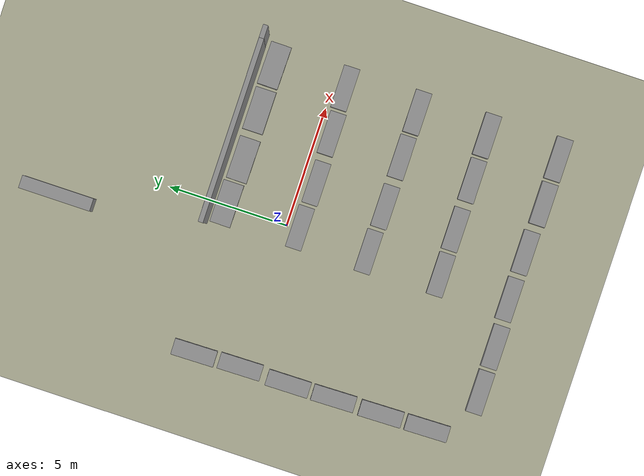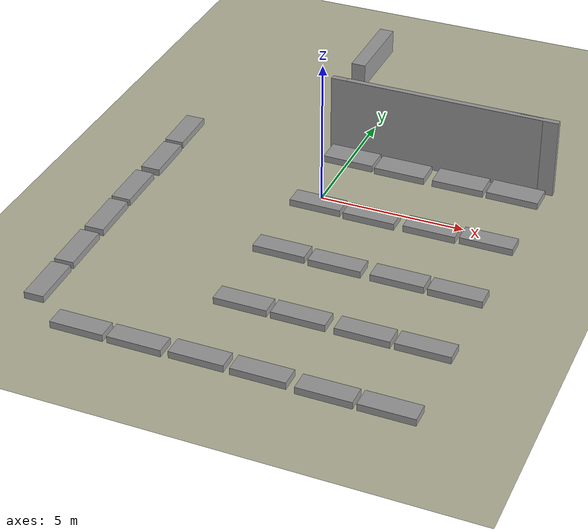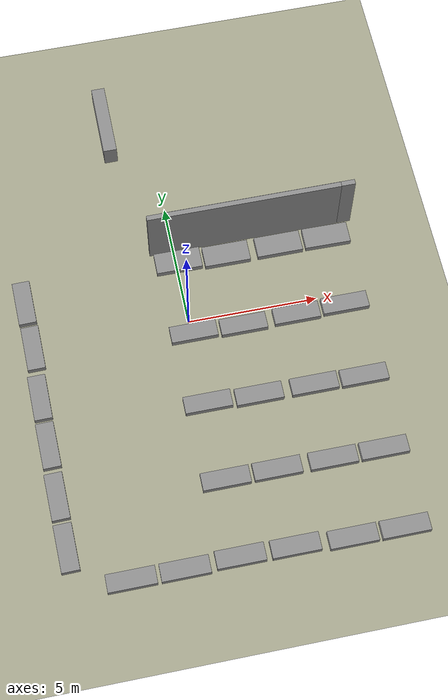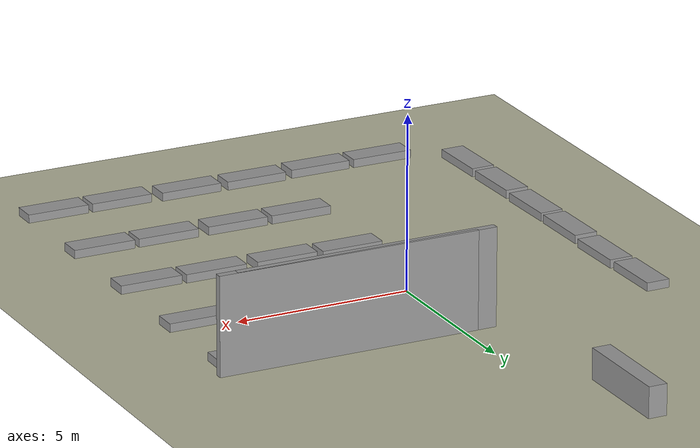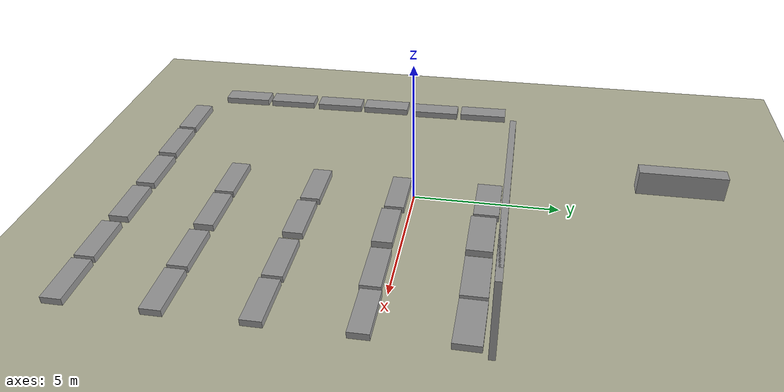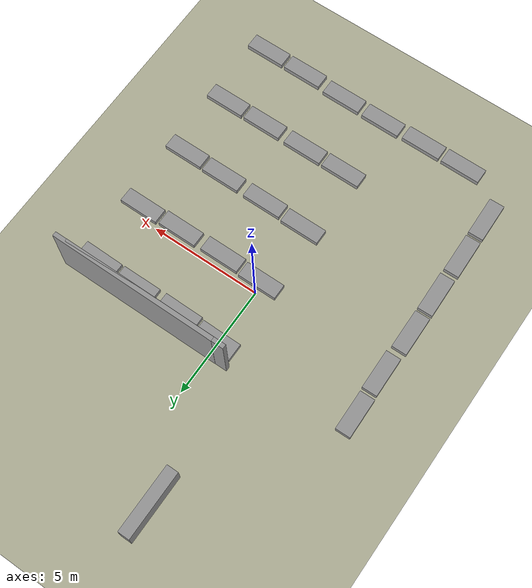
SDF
<sdf version="1.7">
 <world name="default">
  <gravity>0 0 -9.8</gravity>
  <physics name="default_physics" default="0" type="ode">
   <max_step_size>0.001</max_step_size>
   <real_time_factor>1</real_time_factor>
   <real_time_update_rate>1000</real_time_update_rate>
  </physics>
  <light name="Warehouse_CeilingLight_003" type="point">
   <pose>0 0 9 0 -0 0</pose>
   <diffuse>0.5 0.5 0.5 1</diffuse>
   <specular>0.2 0.2 0.2 1</specular>
   <attenuation>
    <range>80</range>
    <constant>0.3</constant>
    <linear>0.01</linear>
    <quadratic>0.001</quadratic>
   </attenuation>
   <direction>0.1 0.1 -1</direction>
   <spot><inner_angle>0</inner_angle><outer_angle>0</outer_angle><falloff>0</falloff></spot>
  </light>
  <magnetic_field>6e-06 2.3e-05 -4.2e-05</magnetic_field>
  <atmosphere type="adiabatic"/>
  <scene><ambient>0.4 0.4 0.4 1</ambient><background>0.7 0.7 0.7 1</background><shadows>1</shadows></scene>
  <spherical_coordinates>
   <surface_model>EARTH_WGS84</surface_model>
   <latitude_deg>0</latitude_deg>
   <longitude_deg>0</longitude_deg>
   <elevation>0</elevation>
   <heading_deg>0</heading_deg>
  </spherical_coordinates>
  <model name="ground_plane_residential">
   <static>1</static>
   <link name="link">
    <collision name="collision">
     <geometry><plane><normal>0 0 1</normal><size>100 100</size></plane></geometry>
     <surface><friction><ode><mu>100</mu><mu2>50</mu2></ode></friction></surface>
    </collision>
    <visual name="visual">
     <cast_shadows>0</cast_shadows>
     <geometry><plane><normal>0 0 1</normal><size>100 100</size></plane></geometry>
     <material>
      <script><uri>file://media/materials/scripts/gazebo.material</uri><name>Gazebo/Residential</name></script>
     </material>
    </visual>
   </link>
   <pose>5.00951 -6.46947 0 0 -0 0</pose>
  </model>
  <model name="grey_wall">
   <static>1</static>
   <link name="link">
    <pose>0 0 1.4 0 -0 0</pose>
    <collision name="collision"><geometry><box><size>7.5 0.2 2.8</size></box></geometry></collision>
    <visual name="visual">
     <cast_shadows>0</cast_shadows>
     <geometry><box><size>7.5 0.2 2.8</size></box></geometry>
     <material>
      <script>
       <uri>model://grey_wall/materials/scripts</uri>
       <uri>model://grey_wall/materials/textures</uri>
       <name>vrc/grey_wall</name>
      </script>
     </material>
    </visual>
   </link>
   <pose>2.80903 3.20071 0 0 -0 0</pose>
  </model>
  <model name="grey_wall_clone">
   <static>1</static>
   <link name="link">
    <pose>0 0 1.4 0 -0 0</pose>
    <collision name="collision"><geometry><box><size>7.5 0.2 2.8</size></box></geometry></collision>
    <visual name="visual">
     <cast_shadows>0</cast_shadows>
     <geometry><box><size>7.5 0.2 2.8</size></box></geometry>
     <material>
      <script>
       <uri>model://grey_wall/materials/scripts</uri>
       <uri>model://grey_wall/materials/textures</uri>
       <name>vrc/grey_wall</name>
      </script>
     </material>
    </visual>
   </link>
   <pose>3.34712 3.20678 0 0 -0 0</pose>
  </model>
  <model name="unit_box_clone_2_clone">
   <pose>4.09103 -0.535972 0.119798 0 0 -4.1e-05</pose>
   <link name="link">
    <inertial>
     <mass>1</mass>
     <inertia>
      <ixx>0.166667</ixx>
      <ixy>0</ixy>
      <ixz>0</ixz>
      <iyy>0.166667</iyy>
      <iyz>0</iyz>
      <izz>0.166667</izz>
     </inertia>
    </inertial>
    <collision name="collision"><geometry><box><size>1.78973 0.671476 0.239596</size></box></geometry></collision>
    <visual name="visual">
     <geometry><box><size>1.78973 0.671476 0.239596</size></box></geometry>
     <material>
      <script><name>Gazebo/Grey</name><uri>file://media/materials/scripts/gazebo.material</uri></script>
     </material>
    </visual>
   </link>
  </model>
  <model name="unit_box_clone_2_clone_0">
   <pose>2.00829 -0.581033 0.119798 0 0 -1.1e-05</pose>
   <link name="link">
    <inertial>
     <mass>1</mass>
     <inertia>
      <ixx>0.166667</ixx>
      <ixy>0</ixy>
      <ixz>0</ixz>
      <iyy>0.166667</iyy>
      <iyz>0</iyz>
      <izz>0.166667</izz>
     </inertia>
    </inertial>
    <collision name="collision"><geometry><box><size>1.78973 0.671476 0.239596</size></box></geometry></collision>
    <visual name="visual">
     <geometry><box><size>1.78973 0.671476 0.239596</size></box></geometry>
     <material>
      <script><name>Gazebo/Grey</name><uri>file://media/materials/scripts/gazebo.material</uri></script>
     </material>
    </visual>
   </link>
  </model>
  <model name="unit_box_clone_2_clone_1">
   <pose>0.091098 -0.523038 0.119798 0 0 -1e-06</pose>
   <link name="link">
    <inertial>
     <mass>1</mass>
     <inertia>
      <ixx>0.166667</ixx>
      <ixy>0</ixy>
      <ixz>0</ixz>
      <iyy>0.166667</iyy>
      <iyz>0</iyz>
      <izz>0.166667</izz>
     </inertia>
    </inertial>
    <collision name="collision"><geometry><box><size>1.78973 0.671476 0.239596</size></box></geometry></collision>
    <visual name="visual">
     <geometry><box><size>1.78973 0.671476 0.239596</size></box></geometry>
     <material>
      <script><name>Gazebo/Grey</name><uri>file://media/materials/scripts/gazebo.material</uri></script>
     </material>
    </visual>
   </link>
  </model>
  <model name="unit_box_clone_2_clone_1_clone">
   <pose>0.04741 -3.45904 0.119798 0 0 -1e-06</pose>
   <link name="link">
    <inertial>
     <mass>1</mass>
     <inertia>
      <ixx>0.166667</ixx>
      <ixy>0</ixy>
      <ixz>0</ixz>
      <iyy>0.166667</iyy>
      <iyz>0</iyz>
      <izz>0.166667</izz>
     </inertia>
    </inertial>
    <collision name="collision"><geometry><box><size>1.78973 0.671476 0.239596</size></box></geometry></collision>
    <visual name="visual">
     <geometry><box><size>1.78973 0.671476 0.239596</size></box></geometry>
     <material>
      <script><name>Gazebo/Grey</name><uri>file://media/materials/scripts/gazebo.material</uri></script>
     </material>
    </visual>
   </link>
  </model>
  <model name="unit_box_clone_2_clone_1_clone_0">
   <pose>1.98103 -3.51931 0.119798 0 0 -1e-06</pose>
   <link name="link">
    <inertial>
     <mass>1</mass>
     <inertia>
      <ixx>0.166667</ixx>
      <ixy>0</ixy>
      <ixz>0</ixz>
      <iyy>0.166667</iyy>
      <iyz>0</iyz>
      <izz>0.166667</izz>
     </inertia>
    </inertial>
    <collision name="collision"><geometry><box><size>1.78973 0.671476 0.239596</size></box></geometry></collision>
    <visual name="visual">
     <geometry><box><size>1.78973 0.671476 0.239596</size></box></geometry>
     <material>
      <script><name>Gazebo/Grey</name><uri>file://media/materials/scripts/gazebo.material</uri></script>
     </material>
    </visual>
   </link>
  </model>
  <model name="unit_box_clone_2_clone_1_clone_1">
   <pose>4.08793 -3.52641 0.119798 0 0 -1e-06</pose>
   <link name="link">
    <inertial>
     <mass>1</mass>
     <inertia>
      <ixx>0.166667</ixx>
      <ixy>0</ixy>
      <ixz>0</ixz>
      <iyy>0.166667</iyy>
      <iyz>0</iyz>
      <izz>0.166667</izz>
     </inertia>
    </inertial>
    <collision name="collision"><geometry><box><size>1.78973 0.671476 0.239596</size></box></geometry></collision>
    <visual name="visual">
     <geometry><box><size>1.78973 0.671476 0.239596</size></box></geometry>
     <material>
      <script><name>Gazebo/Grey</name><uri>file://media/materials/scripts/gazebo.material</uri></script>
     </material>
    </visual>
   </link>
  </model>
  <model name="unit_box_clone_2_clone_1_clone_2">
   <pose>5.99796 -3.5479 0.119798 0 0 -1e-06</pose>
   <link name="link">
    <inertial>
     <mass>1</mass>
     <inertia>
      <ixx>0.166667</ixx>
      <ixy>0</ixy>
      <ixz>0</ixz>
      <iyy>0.166667</iyy>
      <iyz>0</iyz>
      <izz>0.166667</izz>
     </inertia>
    </inertial>
    <collision name="collision"><geometry><box><size>1.78973 0.671476 0.239596</size></box></geometry></collision>
    <visual name="visual">
     <geometry><box><size>1.78973 0.671476 0.239596</size></box></geometry>
     <material>
      <script><name>Gazebo/Grey</name><uri>file://media/materials/scripts/gazebo.material</uri></script>
     </material>
    </visual>
   </link>
  </model>
  <model name="unit_box_clone_2_clone_1_clone_3">
   <pose>6.00818 -9.55888 0.119798 0 -0 5.2e-05</pose>
   <link name="link">
    <inertial>
     <mass>1</mass>
     <inertia>
      <ixx>0.166667</ixx>
      <ixy>0</ixy>
      <ixz>0</ixz>
      <iyy>0.166667</iyy>
      <iyz>0</iyz>
      <izz>0.166667</izz>
     </inertia>
    </inertial>
    <collision name="collision"><geometry><box><size>1.78973 0.671476 0.239596</size></box></geometry></collision>
    <visual name="visual">
     <geometry><box><size>1.78973 0.671476 0.239596</size></box></geometry>
     <material>
      <script><name>Gazebo/Grey</name><uri>file://media/materials/scripts/gazebo.material</uri></script>
     </material>
    </visual>
   </link>
  </model>
  <model name="unit_box_clone_2_clone_1_clone_4">
   <pose>4.0911 -9.55886 0.119798 0 0 -1.4e-05</pose>
   <link name="link">
    <inertial>
     <mass>1</mass>
     <inertia>
      <ixx>0.166667</ixx>
      <ixy>0</ixy>
      <ixz>0</ixz>
      <iyy>0.166667</iyy>
      <iyz>0</iyz>
      <izz>0.166667</izz>
     </inertia>
    </inertial>
    <collision name="collision"><geometry><box><size>1.78973 0.671476 0.239596</size></box></geometry></collision>
    <visual name="visual">
     <geometry><box><size>1.78973 0.671476 0.239596</size></box></geometry>
     <material>
      <script><name>Gazebo/Grey</name><uri>file://media/materials/scripts/gazebo.material</uri></script>
     </material>
    </visual>
   </link>
  </model>
  <model name="unit_box_clone_2_clone_1_clone_5">
   <pose>2.00831 -9.48307 0.119798 0 0 -3e-06</pose>
   <link name="link">
    <inertial>
     <mass>1</mass>
     <inertia>
      <ixx>0.166667</ixx>
      <ixy>0</ixy>
      <ixz>0</ixz>
      <iyy>0.166667</iyy>
      <iyz>0</iyz>
      <izz>0.166667</izz>
     </inertia>
    </inertial>
    <collision name="collision"><geometry><box><size>1.78973 0.671476 0.239596</size></box></geometry></collision>
    <visual name="visual">
     <geometry><box><size>1.78973 0.671476 0.239596</size></box></geometry>
     <material>
      <script><name>Gazebo/Grey</name><uri>file://media/materials/scripts/gazebo.material</uri></script>
     </material>
    </visual>
   </link>
  </model>
  <model name="unit_box_clone_2_clone_1_clone_6">
   <pose>0.01324 -9.46841 0.119798 -0 -0 -1e-06</pose>
   <link name="link">
    <inertial>
     <mass>1</mass>
     <inertia>
      <ixx>0.166667</ixx>
      <ixy>0</ixy>
      <ixz>0</ixz>
      <iyy>0.166667</iyy>
      <iyz>0</iyz>
      <izz>0.166667</izz>
     </inertia>
    </inertial>
    <collision name="collision"><geometry><box><size>1.78973 0.671476 0.239596</size></box></geometry></collision>
    <visual name="visual">
     <geometry><box><size>1.78973 0.671476 0.239596</size></box></geometry>
     <material>
      <script><name>Gazebo/Grey</name><uri>file://media/materials/scripts/gazebo.material</uri></script>
     </material>
    </visual>
   </link>
  </model>
  <model name="unit_box_clone_2_clone_1_clone_7">
   <pose>-1.9917 -9.52852 0.119798 0 -0 -6e-06</pose>
   <link name="link">
    <inertial>
     <mass>1</mass>
     <inertia>
      <ixx>0.166667</ixx>
      <ixy>0</ixy>
      <ixz>0</ixz>
      <iyy>0.166667</iyy>
      <iyz>0</iyz>
      <izz>0.166667</izz>
     </inertia>
    </inertial>
    <collision name="collision"><geometry><box><size>1.78973 0.671476 0.239596</size></box></geometry></collision>
    <visual name="visual">
     <geometry><box><size>1.78973 0.671476 0.239596</size></box></geometry>
     <material>
      <script><name>Gazebo/Grey</name><uri>file://media/materials/scripts/gazebo.material</uri></script>
     </material>
    </visual>
   </link>
  </model>
  <model name="unit_box_clone_2_clone_1_clone_8">
   <pose>-3.91964 -9.53501 0.119798 0 -0 -1e-06</pose>
   <link name="link">
    <inertial>
     <mass>1</mass>
     <inertia>
      <ixx>0.166667</ixx>
      <ixy>0</ixy>
      <ixz>0</ixz>
      <iyy>0.166667</iyy>
      <iyz>0</iyz>
      <izz>0.166667</izz>
     </inertia>
    </inertial>
    <collision name="collision"><geometry><box><size>1.78973 0.671476 0.239596</size></box></geometry></collision>
    <visual name="visual">
     <geometry><box><size>1.78973 0.671476 0.239596</size></box></geometry>
     <material>
      <script><name>Gazebo/Grey</name><uri>file://media/materials/scripts/gazebo.material</uri></script>
     </material>
    </visual>
   </link>
  </model>
  <model name="unit_box_clone_2_clone_1_clone_9">
   <pose>-5.97525 -7.95497 0.119793 1.4e-05 -0 1.59163</pose>
   <link name="link">
    <inertial>
     <mass>1</mass>
     <inertia>
      <ixx>0.166667</ixx>
      <ixy>0</ixy>
      <ixz>0</ixz>
      <iyy>0.166667</iyy>
      <iyz>0</iyz>
      <izz>0.166667</izz>
     </inertia>
    </inertial>
    <collision name="collision"><geometry><box><size>1.78973 0.671476 0.239596</size></box></geometry></collision>
    <visual name="visual">
     <geometry><box><size>1.78973 0.671476 0.239596</size></box></geometry>
     <material>
      <script><name>Gazebo/Grey</name><uri>file://media/materials/scripts/gazebo.material</uri></script>
     </material>
    </visual>
   </link>
  </model>
  <model name="unit_box_clone_2_clone_1_clone_9_clone">
   <pose>-6.00971 -6.00134 0.119793 1.4e-05 -0 1.59163</pose>
   <link name="link">
    <inertial>
     <mass>1</mass>
     <inertia>
      <ixx>0.166667</ixx>
      <ixy>0</ixy>
      <ixz>0</ixz>
      <iyy>0.166667</iyy>
      <iyz>0</iyz>
      <izz>0.166667</izz>
     </inertia>
    </inertial>
    <collision name="collision"><geometry><box><size>1.78973 0.671476 0.239596</size></box></geometry></collision>
    <visual name="visual">
     <geometry><box><size>1.78973 0.671476 0.239596</size></box></geometry>
     <material>
      <script><name>Gazebo/Grey</name><uri>file://media/materials/scripts/gazebo.material</uri></script>
     </material>
    </visual>
   </link>
  </model>
  <model name="unit_box_clone_2_clone_1_clone_9_clone_0">
   <pose>-6.02042 -3.99343 0.119793 1.4e-05 -0 1.59163</pose>
   <link name="link">
    <inertial>
     <mass>1</mass>
     <inertia>
      <ixx>0.166667</ixx>
      <ixy>0</ixy>
      <ixz>0</ixz>
      <iyy>0.166667</iyy>
      <iyz>0</iyz>
      <izz>0.166667</izz>
     </inertia>
    </inertial>
    <collision name="collision"><geometry><box><size>1.78973 0.671476 0.239596</size></box></geometry></collision>
    <visual name="visual">
     <geometry><box><size>1.78973 0.671476 0.239596</size></box></geometry>
     <material>
      <script><name>Gazebo/Grey</name><uri>file://media/materials/scripts/gazebo.material</uri></script>
     </material>
    </visual>
   </link>
  </model>
  <model name="unit_box_clone_2_clone_1_clone_9_clone_1">
   <pose>-6.04252 -2.05955 0.119793 1.4e-05 -0 1.58134</pose>
   <link name="link">
    <inertial>
     <mass>1</mass>
     <inertia>
      <ixx>0.166667</ixx>
      <ixy>0</ixy>
      <ixz>0</ixz>
      <iyy>0.166667</iyy>
      <iyz>0</iyz>
      <izz>0.166667</izz>
     </inertia>
    </inertial>
    <collision name="collision"><geometry><box><size>1.78973 0.671476 0.239596</size></box></geometry></collision>
    <visual name="visual">
     <geometry><box><size>1.78973 0.671476 0.239596</size></box></geometry>
     <material>
      <script><name>Gazebo/Grey</name><uri>file://media/materials/scripts/gazebo.material</uri></script>
     </material>
    </visual>
   </link>
  </model>
  <model name="unit_box_clone_2_clone_1_clone_9_clone_2">
   <pose>-5.99535 -0.00339 0.119793 1.4e-05 0 1.58536</pose>
   <link name="link">
    <inertial>
     <mass>1</mass>
     <inertia>
      <ixx>0.166667</ixx>
      <ixy>0</ixy>
      <ixz>0</ixz>
      <iyy>0.166667</iyy>
      <iyz>0</iyz>
      <izz>0.166667</izz>
     </inertia>
    </inertial>
    <collision name="collision"><geometry><box><size>1.78973 0.671476 0.239596</size></box></geometry></collision>
    <visual name="visual">
     <geometry><box><size>1.78973 0.671476 0.239596</size></box></geometry>
     <material>
      <script><name>Gazebo/Grey</name><uri>file://media/materials/scripts/gazebo.material</uri></script>
     </material>
    </visual>
   </link>
  </model>
  <model name="unit_box_clone_2_clone_1_clone_9_clone_3">
   <pose>-6.04879 1.94231 0.119793 1.4e-05 -0 1.58729</pose>
   <link name="link">
    <inertial>
     <mass>1</mass>
     <inertia>
      <ixx>0.166667</ixx>
      <ixy>0</ixy>
      <ixz>0</ixz>
      <iyy>0.166667</iyy>
      <iyz>0</iyz>
      <izz>0.166667</izz>
     </inertia>
    </inertial>
    <collision name="collision"><geometry><box><size>1.78973 0.671476 0.239596</size></box></geometry></collision>
    <visual name="visual">
     <geometry><box><size>1.78973 0.671476 0.239596</size></box></geometry>
     <material>
      <script><name>Gazebo/Grey</name><uri>file://media/materials/scripts/gazebo.material</uri></script>
     </material>
    </visual>
   </link>
  </model>
  <model name="unit_box_clone_clone">
   <pose>1.97859 2.51812 0.119798 -0 -0 -0.006321</pose>
   <link name="link">
    <inertial>
     <mass>1</mass>
     <inertia>
      <ixx>0.166667</ixx>
      <ixy>0</ixy>
      <ixz>0</ixz>
      <iyy>0.166667</iyy>
      <iyz>0</iyz>
      <izz>0.166667</izz>
     </inertia>
    </inertial>
    <collision name="collision"><geometry><box><size>1.78973 0.859072 0.239596</size></box></geometry></collision>
    <visual name="visual">
     <geometry><box><size>1.78973 0.859072 0.239596</size></box></geometry>
     <material>
      <script><name>Gazebo/Grey</name><uri>file://media/materials/scripts/gazebo.material</uri></script>
     </material>
    </visual>
   </link>
  </model>
  <model name="unit_box_clone_clone_0">
   <pose>4.06306 2.52949 0.119798 0 -0 0.000983</pose>
   <link name="link">
    <inertial>
     <mass>1</mass>
     <inertia>
      <ixx>0.166667</ixx>
      <ixy>0</ixy>
      <ixz>0</ixz>
      <iyy>0.166667</iyy>
      <iyz>0</iyz>
      <izz>0.166667</izz>
     </inertia>
    </inertial>
    <collision name="collision"><geometry><box><size>1.78973 0.859072 0.239596</size></box></geometry></collision>
    <visual name="visual">
     <geometry><box><size>1.78973 0.859072 0.239596</size></box></geometry>
     <material>
      <script><name>Gazebo/Grey</name><uri>file://media/materials/scripts/gazebo.material</uri></script>
     </material>
    </visual>
   </link>
  </model>
  <model name="unit_box_clone_clone_1">
   <pose>5.98072 2.52889 0.119798 0 0 -0.012966</pose>
   <link name="link">
    <inertial>
     <mass>1</mass>
     <inertia>
      <ixx>0.166667</ixx>
      <ixy>0</ixy>
      <ixz>0</ixz>
      <iyy>0.166667</iyy>
      <iyz>0</iyz>
      <izz>0.166667</izz>
     </inertia>
    </inertial>
    <collision name="collision"><geometry><box><size>1.78973 0.859072 0.239596</size></box></geometry></collision>
    <visual name="visual">
     <geometry><box><size>1.78973 0.859072 0.239596</size></box></geometry>
     <material>
      <script><name>Gazebo/Grey</name><uri>file://media/materials/scripts/gazebo.material</uri></script>
     </material>
    </visual>
   </link>
  </model>
  <model name="unit_box_clone_2_clone_clone">
   <pose>6.0083 -0.479059 0.119798 0 0 -5e-06</pose>
   <link name="link">
    <inertial>
     <mass>1</mass>
     <inertia>
      <ixx>0.166667</ixx>
      <ixy>0</ixy>
      <ixz>0</ixz>
      <iyy>0.166667</iyy>
      <iyz>0</iyz>
      <izz>0.166667</izz>
     </inertia>
    </inertial>
    <collision name="collision"><geometry><box><size>1.78973 0.671476 0.239596</size></box></geometry></collision>
    <visual name="visual">
     <geometry><box><size>1.78973 0.671476 0.239596</size></box></geometry>
     <material>
      <script><name>Gazebo/Grey</name><uri>file://media/materials/scripts/gazebo.material</uri></script>
     </material>
    </visual>
   </link>
  </model>
  <model name="unit_box_clone_clone_clone">
   <pose>0.084769 2.58959 0.119798 0 -0 -0.005941</pose>
   <link name="link">
    <inertial>
     <mass>1</mass>
     <inertia>
      <ixx>0.166667</ixx>
      <ixy>0</ixy>
      <ixz>0</ixz>
      <iyy>0.166667</iyy>
      <iyz>0</iyz>
      <izz>0.166667</izz>
     </inertia>
    </inertial>
    <collision name="collision"><geometry><box><size>1.78973 0.859072 0.239596</size></box></geometry></collision>
    <visual name="visual">
     <geometry><box><size>1.78973 0.859072 0.239596</size></box></geometry>
     <material>
      <script><name>Gazebo/Grey</name><uri>file://media/materials/scripts/gazebo.material</uri></script>
     </material>
    </visual>
   </link>
  </model>
  <model name="unit_box_clone_2_clone_1_clone_8_clone">
   <pose>6.0083 -6.51736 0.119798 -0 -0 -5.3e-05</pose>
   <link name="link">
    <inertial>
     <mass>1</mass>
     <inertia>
      <ixx>0.166667</ixx>
      <ixy>0</ixy>
      <ixz>0</ixz>
      <iyy>0.166667</iyy>
      <iyz>0</iyz>
      <izz>0.166667</izz>
     </inertia>
    </inertial>
    <collision name="collision"><geometry><box><size>1.78973 0.671476 0.239596</size></box></geometry></collision>
    <visual name="visual">
     <geometry><box><size>1.78973 0.671476 0.239596</size></box></geometry>
     <material>
      <script><name>Gazebo/Grey</name><uri>file://media/materials/scripts/gazebo.material</uri></script>
     </material>
    </visual>
   </link>
  </model>
  <model name="unit_box_clone_2_clone_1_clone_8_clone_0">
   <pose>4.09109 -6.52522 0.119798 0 0 -2.6e-05</pose>
   <link name="link">
    <inertial>
     <mass>1</mass>
     <inertia>
      <ixx>0.166667</ixx>
      <ixy>0</ixy>
      <ixz>0</ixz>
      <iyy>0.166667</iyy>
      <iyz>0</iyz>
      <izz>0.166667</izz>
     </inertia>
    </inertial>
    <collision name="collision"><geometry><box><size>1.78973 0.671476 0.239596</size></box></geometry></collision>
    <visual name="visual">
     <geometry><box><size>1.78973 0.671476 0.239596</size></box></geometry>
     <material>
      <script><name>Gazebo/Grey</name><uri>file://media/materials/scripts/gazebo.material</uri></script>
     </material>
    </visual>
   </link>
  </model>
  <model name="unit_box_clone_2_clone_1_clone_8_clone_1">
   <pose>2.00825 -6.51699 0.119798 0 -0 -1.4e-05</pose>
   <link name="link">
    <inertial>
     <mass>1</mass>
     <inertia>
      <ixx>0.166667</ixx>
      <ixy>0</ixy>
      <ixz>0</ixz>
      <iyy>0.166667</iyy>
      <iyz>0</iyz>
      <izz>0.166667</izz>
     </inertia>
    </inertial>
    <collision name="collision"><geometry><box><size>1.78973 0.671476 0.239596</size></box></geometry></collision>
    <visual name="visual">
     <geometry><box><size>1.78973 0.671476 0.239596</size></box></geometry>
     <material>
      <script><name>Gazebo/Grey</name><uri>file://media/materials/scripts/gazebo.material</uri></script>
     </material>
    </visual>
   </link>
  </model>
  <model name="unit_box_clone_2_clone_1_clone_8_clone_2">
   <pose>0.091059 -6.52293 0.119798 0 0 -4e-06</pose>
   <link name="link">
    <inertial>
     <mass>1</mass>
     <inertia>
      <ixx>0.166667</ixx>
      <ixy>0</ixy>
      <ixz>0</ixz>
      <iyy>0.166667</iyy>
      <iyz>0</iyz>
      <izz>0.166667</izz>
     </inertia>
    </inertial>
    <collision name="collision"><geometry><box><size>1.78973 0.671476 0.239596</size></box></geometry></collision>
    <visual name="visual">
     <geometry><box><size>1.78973 0.671476 0.239596</size></box></geometry>
     <material>
      <script><name>Gazebo/Grey</name><uri>file://media/materials/scripts/gazebo.material</uri></script>
     </material>
    </visual>
   </link>
  </model>
  <model name="unit_box_clone_2_clone_1_clone_9_clone_2_clone">
   <pose>-1.68319 9.16238 0.437531 0 -0.000132 1.57041</pose>
   <link name="link">
    <inertial>
     <mass>1</mass>
     <inertia>
      <ixx>0.166667</ixx>
      <ixy>0</ixy>
      <ixz>0</ixz>
      <iyy>0.166667</iyy>
      <iyz>0</iyz>
      <izz>0.166667</izz>
     </inertia>
    </inertial>
    <collision name="collision"><geometry><box><size>2.99323 0.527477 0.875456</size></box></geometry></collision>
    <visual name="visual">
     <geometry><box><size>2.99323 0.527477 0.875456</size></box></geometry>
     <material>
      <script><name>Gazebo/Grey</name><uri>file://media/materials/scripts/gazebo.material</uri></script>
     </material>
    </visual>
   </link>
  </model>
 </world>
</sdf>
